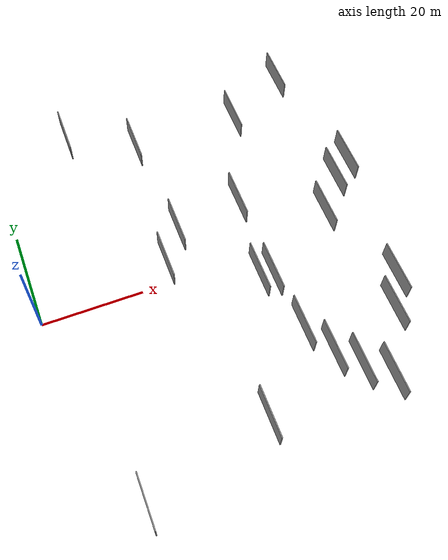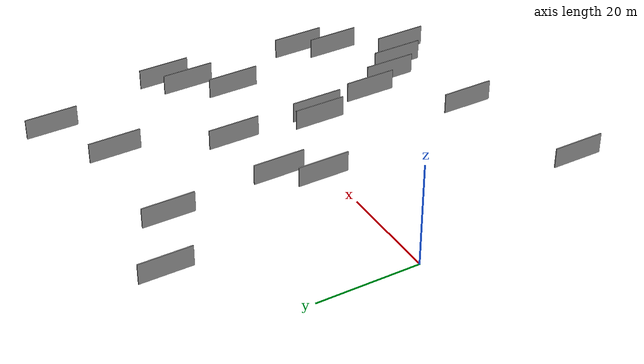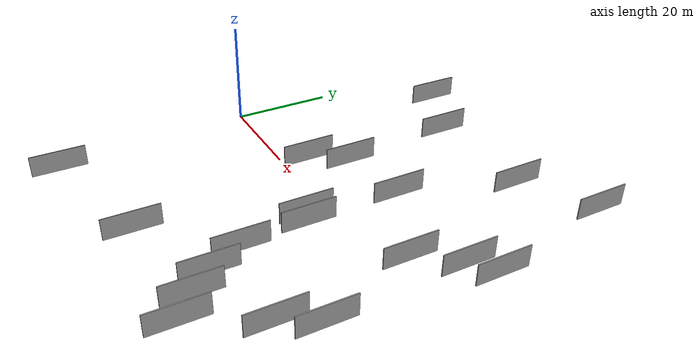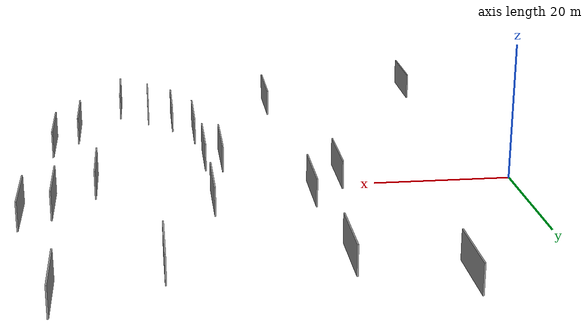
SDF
<sdf version="1.6">
 <world name="default">
  <scene>
   <sky><clouds><speed>12</speed></clouds></sky>
   <ambient>0.4 0.4 0.4 1</ambient>
   <background>0.7 0.7 0.7 1</background>
   <shadows>1</shadows>
  </scene>
  <gravity>0 0 -9.8066</gravity>
  <magnetic_field>6e-06 2.3e-05 -4.2e-05</magnetic_field>
  <physics default="0" name="default_physics" type="ode">
   <ode>
    <solver>
     <type>quick</type>
     <iters>10</iters>
     <sor>1.0</sor>
     <use_dynamic_moi_rescaling>0</use_dynamic_moi_rescaling>
    </solver>
    <constraints>
     <cfm>0</cfm>
     <erp>0.2</erp>
     <contact_max_correcting_vel>100</contact_max_correcting_vel>
     <contact_surface_layer>0.001</contact_surface_layer>
    </constraints>
   </ode>
   <max_step_size>0.004</max_step_size>
   <real_time_factor>1</real_time_factor>
   <real_time_update_rate>250</real_time_update_rate>
  </physics>
  <light name="sun" type="directional">
   <pose>0 0 10 0 0 0</pose>
   <diffuse>0.8 0.8 0.8 1</diffuse>
   <specular>0.2 0.2 0.2 1</specular>
   <attenuation>
    <range>1000</range>
    <constant>0.9</constant>
    <linear>0.01</linear>
    <quadratic>0.001</quadratic>
   </attenuation>
   <direction>-0.5 0.1 -0.9</direction>
  </light>
  <model name="grey_wall_1">
   <static>1</static>
   <pose>52.1285 -28.7580 2.5 0.000000 0.000000 1.570796</pose>
   <link name="link">
    <pose>0 0 2.00 0 0 0</pose>
    <collision name="collision"><geometry><box><size>10.00 0.2 4.00</size></box></geometry></collision>
    <visual name="visual">
     <cast_shadows>0</cast_shadows>
     <geometry><box><size>10.00 0.2 4.00</size></box></geometry>
     <material>
      <script>
       <uri>model://grey_wall/materials/scripts</uri>
       <uri>model://grey_wall/materials/textures</uri>
       <name>vrc/grey_wall</name>
      </script>
     </material>
    </visual>
   </link>
  </model>
  <model name="grey_wall_2">
   <static>1</static>
   <pose>69.0554 13.7410 2.5 0.000000 0.000000 1.570796</pose>
   <link name="link">
    <pose>0 0 2.00 0 0 0</pose>
    <collision name="collision"><geometry><box><size>10.00 0.2 4.00</size></box></geometry></collision>
    <visual name="visual">
     <cast_shadows>0</cast_shadows>
     <geometry><box><size>10.00 0.2 4.00</size></box></geometry>
     <material>
      <script>
       <uri>model://grey_wall/materials/scripts</uri>
       <uri>model://grey_wall/materials/textures</uri>
       <name>vrc/grey_wall</name>
      </script>
     </material>
    </visual>
   </link>
  </model>
  <model name="grey_wall_3">
   <static>1</static>
   <pose>62.7746 -20.4408 2.5 0.000000 0.000000 1.570796</pose>
   <link name="link">
    <pose>0 0 2.00 0 0 0</pose>
    <collision name="collision"><geometry><box><size>10.00 0.2 4.00</size></box></geometry></collision>
    <visual name="visual">
     <cast_shadows>0</cast_shadows>
     <geometry><box><size>10.00 0.2 4.00</size></box></geometry>
     <material>
      <script>
       <uri>model://grey_wall/materials/scripts</uri>
       <uri>model://grey_wall/materials/textures</uri>
       <name>vrc/grey_wall</name>
      </script>
     </material>
    </visual>
   </link>
  </model>
  <model name="grey_wall_4">
   <static>1</static>
   <pose>44.2909 -6.0076 2.5 0.000000 0.000000 1.570796</pose>
   <link name="link">
    <pose>0 0 2.00 0 0 0</pose>
    <collision name="collision"><geometry><box><size>10.00 0.2 4.00</size></box></geometry></collision>
    <visual name="visual">
     <cast_shadows>0</cast_shadows>
     <geometry><box><size>10.00 0.2 4.00</size></box></geometry>
     <material>
      <script>
       <uri>model://grey_wall/materials/scripts</uri>
       <uri>model://grey_wall/materials/textures</uri>
       <name>vrc/grey_wall</name>
      </script>
     </material>
    </visual>
   </link>
  </model>
  <model name="grey_wall_5">
   <static>1</static>
   <pose>28.8728 31.9158 2.5 0.000000 0.000000 1.570796</pose>
   <link name="link">
    <pose>0 0 2.00 0 0 0</pose>
    <collision name="collision"><geometry><box><size>10.00 0.2 4.00</size></box></geometry></collision>
    <visual name="visual">
     <cast_shadows>0</cast_shadows>
     <geometry><box><size>10.00 0.2 4.00</size></box></geometry>
     <material>
      <script>
       <uri>model://grey_wall/materials/scripts</uri>
       <uri>model://grey_wall/materials/textures</uri>
       <name>vrc/grey_wall</name>
      </script>
     </material>
    </visual>
   </link>
  </model>
  <model name="grey_wall_6">
   <static>1</static>
   <pose>59.5793 3.6208 2.5 0.000000 0.000000 1.570796</pose>
   <link name="link">
    <pose>0 0 2.00 0 0 0</pose>
    <collision name="collision"><geometry><box><size>10.00 0.2 4.00</size></box></geometry></collision>
    <visual name="visual">
     <cast_shadows>0</cast_shadows>
     <geometry><box><size>10.00 0.2 4.00</size></box></geometry>
     <material>
      <script>
       <uri>model://grey_wall/materials/scripts</uri>
       <uri>model://grey_wall/materials/textures</uri>
       <name>vrc/grey_wall</name>
      </script>
     </material>
    </visual>
   </link>
  </model>
  <model name="grey_wall_7">
   <static>1</static>
   <pose>56.5368 -32.3315 2.5 0.000000 0.000000 1.570796</pose>
   <link name="link">
    <pose>0 0 2.00 0 0 0</pose>
    <collision name="collision"><geometry><box><size>10.00 0.2 4.00</size></box></geometry></collision>
    <visual name="visual">
     <cast_shadows>0</cast_shadows>
     <geometry><box><size>10.00 0.2 4.00</size></box></geometry>
     <material>
      <script>
       <uri>model://grey_wall/materials/scripts</uri>
       <uri>model://grey_wall/materials/textures</uri>
       <name>vrc/grey_wall</name>
      </script>
     </material>
    </visual>
   </link>
  </model>
  <model name="grey_wall_8">
   <static>1</static>
   <pose>26.0133 3.2339 2.5 0.000000 0.000000 1.570796</pose>
   <link name="link">
    <pose>0 0 2.00 0 0 0</pose>
    <collision name="collision"><geometry><box><size>10.00 0.2 4.00</size></box></geometry></collision>
    <visual name="visual">
     <cast_shadows>0</cast_shadows>
     <geometry><box><size>10.00 0.2 4.00</size></box></geometry>
     <material>
      <script>
       <uri>model://grey_wall/materials/scripts</uri>
       <uri>model://grey_wall/materials/textures</uri>
       <name>vrc/grey_wall</name>
      </script>
     </material>
    </visual>
   </link>
  </model>
  <model name="grey_wall_9">
   <static>1</static>
   <pose>32.7860 -32.1256 2.5 0.000000 0.000000 1.570796</pose>
   <link name="link">
    <pose>0 0 2.00 0 0 0</pose>
    <collision name="collision"><geometry><box><size>10.00 0.2 4.00</size></box></geometry></collision>
    <visual name="visual">
     <cast_shadows>0</cast_shadows>
     <geometry><box><size>10.00 0.2 4.00</size></box></geometry>
     <material>
      <script>
       <uri>model://grey_wall/materials/scripts</uri>
       <uri>model://grey_wall/materials/textures</uri>
       <name>vrc/grey_wall</name>
      </script>
     </material>
    </visual>
   </link>
  </model>
  <model name="grey_wall_10">
   <static>1</static>
   <pose>44.0223 11.5469 2.5 0.000000 0.000000 1.570796</pose>
   <link name="link">
    <pose>0 0 2.00 0 0 0</pose>
    <collision name="collision"><geometry><box><size>10.00 0.2 4.00</size></box></geometry></collision>
    <visual name="visual">
     <cast_shadows>0</cast_shadows>
     <geometry><box><size>10.00 0.2 4.00</size></box></geometry>
     <material>
      <script>
       <uri>model://grey_wall/materials/scripts</uri>
       <uri>model://grey_wall/materials/textures</uri>
       <name>vrc/grey_wall</name>
      </script>
     </material>
    </visual>
   </link>
  </model>
  <model name="grey_wall_11">
   <static>1</static>
   <pose>41.8833 -5.2509 2.5 0.000000 0.000000 1.570796</pose>
   <link name="link">
    <pose>0 0 2.00 0 0 0</pose>
    <collision name="collision"><geometry><box><size>10.00 0.2 4.00</size></box></geometry></collision>
    <visual name="visual">
     <cast_shadows>0</cast_shadows>
     <geometry><box><size>10.00 0.2 4.00</size></box></geometry>
     <material>
      <script>
       <uri>model://grey_wall/materials/scripts</uri>
       <uri>model://grey_wall/materials/textures</uri>
       <name>vrc/grey_wall</name>
      </script>
     </material>
    </visual>
   </link>
  </model>
  <model name="grey_wall_12">
   <static>1</static>
   <pose>48.4264 -24.7357 2.5 0.000000 0.000000 1.570796</pose>
   <link name="link">
    <pose>0 0 2.00 0 0 0</pose>
    <collision name="collision"><geometry><box><size>10.00 0.2 4.00</size></box></geometry></collision>
    <visual name="visual">
     <cast_shadows>0</cast_shadows>
     <geometry><box><size>10.00 0.2 4.00</size></box></geometry>
     <material>
      <script>
       <uri>model://grey_wall/materials/scripts</uri>
       <uri>model://grey_wall/materials/textures</uri>
       <name>vrc/grey_wall</name>
      </script>
     </material>
    </visual>
   </link>
  </model>
  <model name="grey_wall_13">
   <static>1</static>
   <pose>63.7238 38.9453 2.5 0.000000 0.000000 1.570796</pose>
   <link name="link">
    <pose>0 0 2.00 0 0 0</pose>
    <collision name="collision"><geometry><box><size>10.00 0.2 4.00</size></box></geometry></collision>
    <visual name="visual">
     <cast_shadows>0</cast_shadows>
     <geometry><box><size>10.00 0.2 4.00</size></box></geometry>
     <material>
      <script>
       <uri>model://grey_wall/materials/scripts</uri>
       <uri>model://grey_wall/materials/textures</uri>
       <name>vrc/grey_wall</name>
      </script>
     </material>
    </visual>
   </link>
  </model>
  <model name="grey_wall_14">
   <static>1</static>
   <pose>66.2286 -14.3707 2.5 0.000000 0.000000 1.570796</pose>
   <link name="link">
    <pose>0 0 2.00 0 0 0</pose>
    <collision name="collision"><geometry><box><size>10.00 0.2 4.00</size></box></geometry></collision>
    <visual name="visual">
     <cast_shadows>0</cast_shadows>
     <geometry><box><size>10.00 0.2 4.00</size></box></geometry>
     <material>
      <script>
       <uri>model://grey_wall/materials/scripts</uri>
       <uri>model://grey_wall/materials/textures</uri>
       <name>vrc/grey_wall</name>
      </script>
     </material>
    </visual>
   </link>
  </model>
  <model name="grey_wall_15">
   <static>1</static>
   <pose>8.2345 -38.9565 2.5 0.000000 0.000000 1.570796</pose>
   <link name="link">
    <pose>0 0 2.00 0 0 0</pose>
    <collision name="collision"><geometry><box><size>10.00 0.2 4.00</size></box></geometry></collision>
    <visual name="visual">
     <cast_shadows>0</cast_shadows>
     <geometry><box><size>10.00 0.2 4.00</size></box></geometry>
     <material>
      <script>
       <uri>model://grey_wall/materials/scripts</uri>
       <uri>model://grey_wall/materials/textures</uri>
       <name>vrc/grey_wall</name>
      </script>
     </material>
    </visual>
   </link>
  </model>
  <model name="grey_wall_16">
   <static>1</static>
   <pose>50.9264 32.0033 2.5 0.000000 0.000000 1.570796</pose>
   <link name="link">
    <pose>0 0 2.00 0 0 0</pose>
    <collision name="collision"><geometry><box><size>10.00 0.2 4.00</size></box></geometry></collision>
    <visual name="visual">
     <cast_shadows>0</cast_shadows>
     <geometry><box><size>10.00 0.2 4.00</size></box></geometry>
     <material>
      <script>
       <uri>model://grey_wall/materials/scripts</uri>
       <uri>model://grey_wall/materials/textures</uri>
       <name>vrc/grey_wall</name>
      </script>
     </material>
    </visual>
   </link>
  </model>
  <model name="grey_wall_17">
   <static>1</static>
   <pose>45.2515 -18.3288 2.5 0.000000 0.000000 1.570796</pose>
   <link name="link">
    <pose>0 0 2.00 0 0 0</pose>
    <collision name="collision"><geometry><box><size>10.00 0.2 4.00</size></box></geometry></collision>
    <visual name="visual">
     <cast_shadows>0</cast_shadows>
     <geometry><box><size>10.00 0.2 4.00</size></box></geometry>
     <material>
      <script>
       <uri>model://grey_wall/materials/scripts</uri>
       <uri>model://grey_wall/materials/textures</uri>
       <name>vrc/grey_wall</name>
      </script>
     </material>
    </visual>
   </link>
  </model>
  <model name="grey_wall_18">
   <static>1</static>
   <pose>15.7720 38.6179 2.5 0.000000 0.000000 1.570796</pose>
   <link name="link">
    <pose>0 0 2.00 0 0 0</pose>
    <collision name="collision"><geometry><box><size>10.00 0.2 4.00</size></box></geometry></collision>
    <visual name="visual">
     <cast_shadows>0</cast_shadows>
     <geometry><box><size>10.00 0.2 4.00</size></box></geometry>
     <material>
      <script>
       <uri>model://grey_wall/materials/scripts</uri>
       <uri>model://grey_wall/materials/textures</uri>
       <name>vrc/grey_wall</name>
      </script>
     </material>
    </visual>
   </link>
  </model>
  <model name="grey_wall_19">
   <static>1</static>
   <pose>30.4890 9.6931 2.5 0.000000 0.000000 1.570796</pose>
   <link name="link">
    <pose>0 0 2.00 0 0 0</pose>
    <collision name="collision"><geometry><box><size>10.00 0.2 4.00</size></box></geometry></collision>
    <visual name="visual">
     <cast_shadows>0</cast_shadows>
     <geometry><box><size>10.00 0.2 4.00</size></box></geometry>
     <material>
      <script>
       <uri>model://grey_wall/materials/scripts</uri>
       <uri>model://grey_wall/materials/textures</uri>
       <name>vrc/grey_wall</name>
      </script>
     </material>
    </visual>
   </link>
  </model>
  <model name="grey_wall_20">
   <static>1</static>
   <pose>65.0079 10.5568 2.5 0.000000 0.000000 1.570796</pose>
   <link name="link">
    <pose>0 0 2.00 0 0 0</pose>
    <collision name="collision"><geometry><box><size>10.00 0.2 4.00</size></box></geometry></collision>
    <visual name="visual">
     <cast_shadows>0</cast_shadows>
     <geometry><box><size>10.00 0.2 4.00</size></box></geometry>
     <material>
      <script>
       <uri>model://grey_wall/materials/scripts</uri>
       <uri>model://grey_wall/materials/textures</uri>
       <name>vrc/grey_wall</name>
      </script>
     </material>
    </visual>
   </link>
  </model>
 </world>
</sdf>
